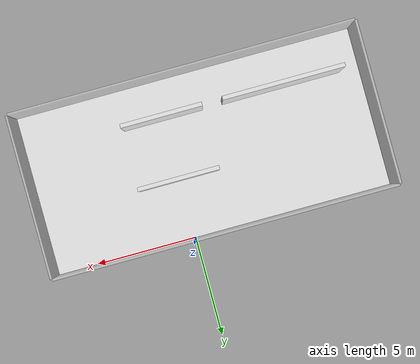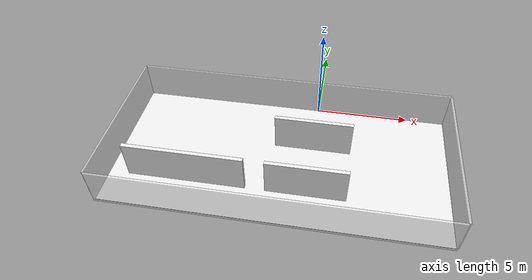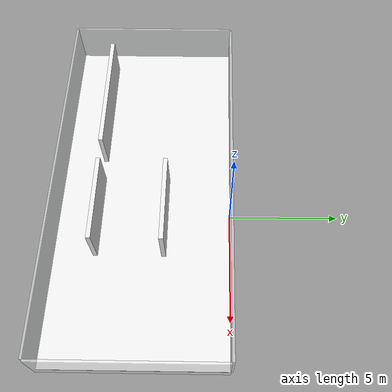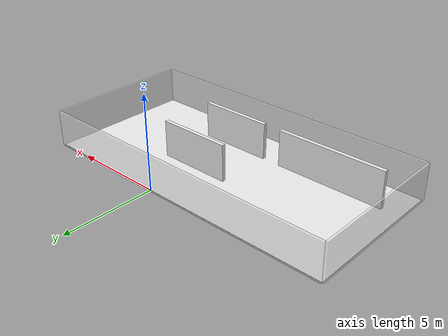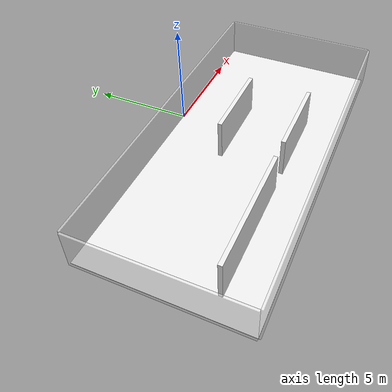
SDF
<sdf version="1.6">
 <world name="mission">
  <include><uri>model://sun</uri></include>
  <model name="floor">
   <static>true</static>
   <pose>-1.5 -4 -0.01 0 0 0</pose>
   <link name="link">
    <collision name="collision"><geometry><box><size>17 8 0.02</size></box></geometry></collision>
    <visual name="visual">
     <geometry><box><size>17 8 0.02</size></box></geometry>
     <material>
      <script><uri>file://media/materials/scripts/gazebo.material</uri><name>Gazebo/White</name></script>
     </material>
    </visual>
   </link>
  </model>
  <model name="wall_left">
   <static>true</static>
   <pose>-10.05 -4 1 0 0 0</pose>
   <link name="link">
    <collision name="collision"><geometry><box><size>0.1 8 2</size></box></geometry></collision>
    <visual name="visual">
     <geometry><box><size>0.1 8 2</size></box></geometry>
     <material>
      <script><uri>file://media/materials/scripts/gazebo.material</uri><name>Gazebo/White</name></script>
     </material>
     <transparency>0.5</transparency>
    </visual>
   </link>
  </model>
  <model name="wall_right">
   <static>true</static>
   <pose>7.05 -4 1 0 0 0</pose>
   <link name="link">
    <collision name="collision"><geometry><box><size>0.1 8 2</size></box></geometry></collision>
    <visual name="visual">
     <geometry><box><size>0.1 8 2</size></box></geometry>
     <material>
      <script><uri>file://media/materials/scripts/gazebo.material</uri><name>Gazebo/White</name></script>
     </material>
     <transparency>0.5</transparency>
    </visual>
   </link>
  </model>
  <model name="wall_top">
   <static>true</static>
   <pose>-1.5 0.05 1 0 0 0</pose>
   <link name="link">
    <collision name="collision"><geometry><box><size>17 0.1 2</size></box></geometry></collision>
    <visual name="visual">
     <geometry><box><size>17 0.1 2</size></box></geometry>
     <material>
      <script><uri>file://media/materials/scripts/gazebo.material</uri><name>Gazebo/White</name></script>
     </material>
     <transparency>0.5</transparency>
    </visual>
   </link>
  </model>
  <model name="wall_bottom">
   <static>true</static>
   <pose>-1.5 -8.05 1 0 0 0</pose>
   <link name="link">
    <collision name="collision"><geometry><box><size>17 0.1 2</size></box></geometry></collision>
    <visual name="visual">
     <geometry><box><size>17 0.1 2</size></box></geometry>
     <material>
      <script><uri>file://media/materials/scripts/gazebo.material</uri><name>Gazebo/White</name></script>
     </material>
     <transparency>0.5</transparency>
    </visual>
   </link>
  </model>
  <model name="wall_obstacle">
   <static>true</static>
   <pose>-6 -6.1 1 0 0 0</pose>
   <link name="link">
    <collision name="collision"><geometry><box><size>6 0.2 2</size></box></geometry></collision>
    <visual name="visual">
     <geometry><box><size>6 0.2 2</size></box></geometry>
     <material>
      <script><uri>file://media/materials/scripts/gazebo.material</uri><name>Gazebo/White</name></script>
     </material>
    </visual>
   </link>
  </model>
  <model name="wall_ring">
   <static>true</static>
   <pose>0 -6.1 1 0 0 0</pose>
   <link name="link">
    <collision name="collision"><geometry><box><size>4 0.2 2</size></box></geometry></collision>
    <visual name="visual">
     <geometry><box><size>4 0.2 2</size></box></geometry>
     <material>
      <script><uri>file://media/materials/scripts/gazebo.material</uri><name>Gazebo/White</name></script>
     </material>
    </visual>
   </link>
  </model>
  <model name="wall_door_ring">
   <static>true</static>
   <pose>0 -3 1 0 0 0</pose>
   <link name="link">
    <collision name="collision"><geometry><box><size>4 0.2 2</size></box></geometry></collision>
    <visual name="visual">
     <geometry><box><size>4 0.2 2</size></box></geometry>
     <material>
      <script><uri>file://media/materials/scripts/gazebo.material</uri><name>Gazebo/White</name></script>
     </material>
    </visual>
   </link>
  </model>
 </world>
</sdf>
